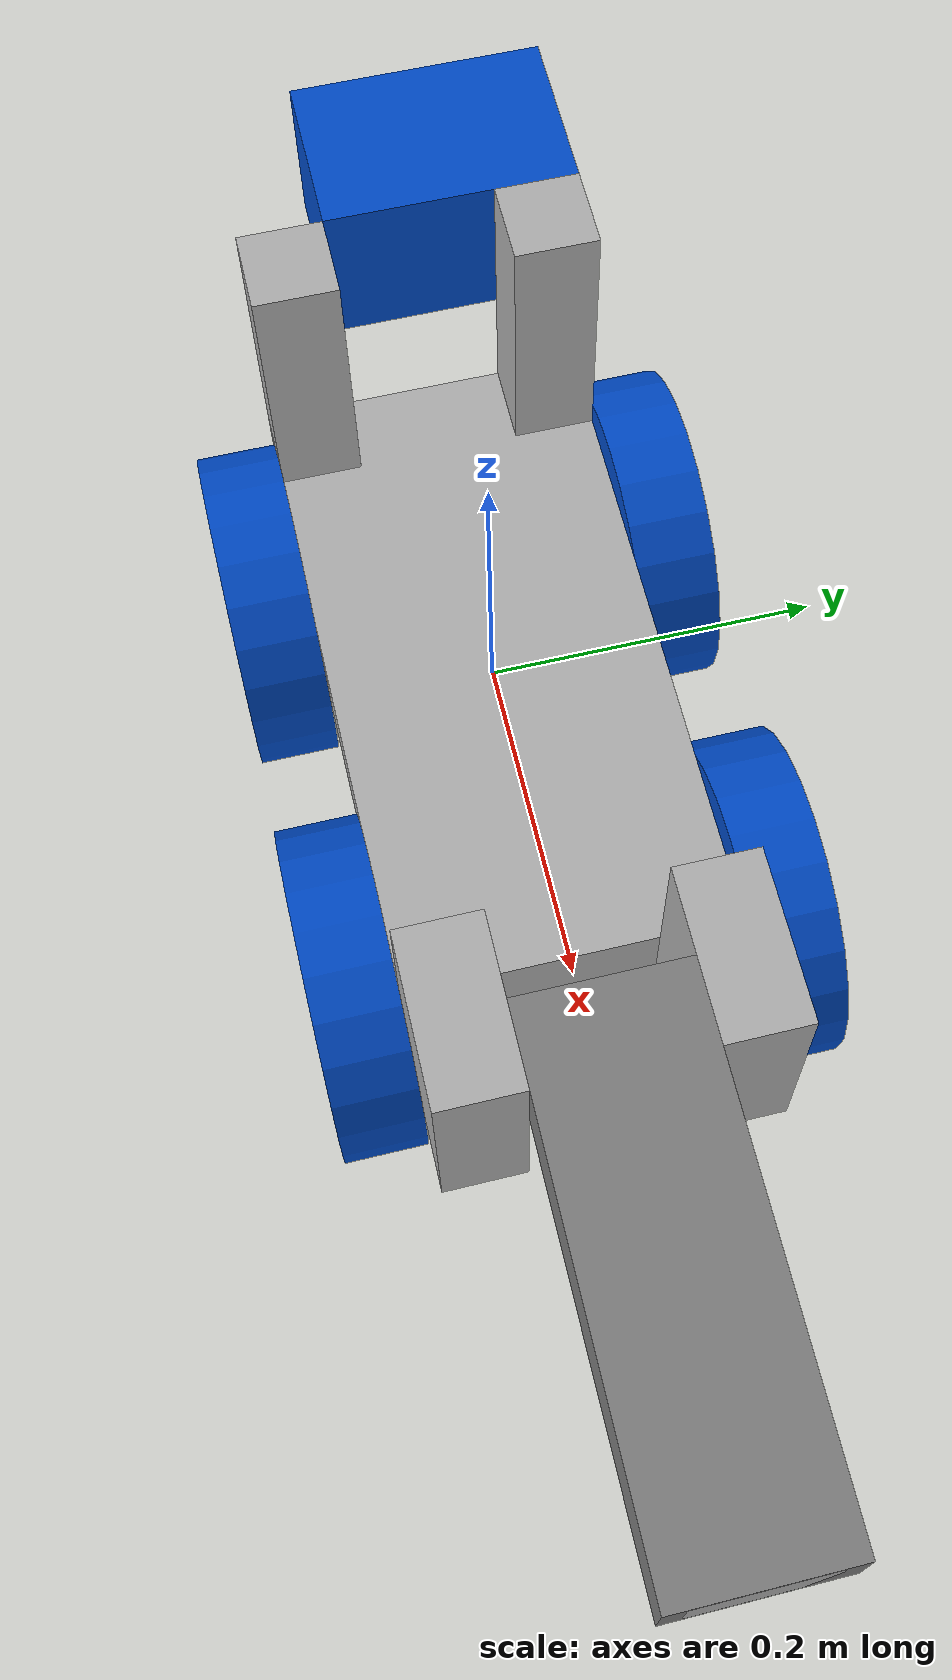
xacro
<?xml version='1.0' encoding="UTF-8"?>

<robot name="excavation_simple" xmlns:xacro="http://www.ros.org/wiki/xacro">

<!--Macros-->
<!--  Macros are constants that can be used to define any
      aspect of the model.  They can define things like
      values, colors, links, joints, transmissions, ect.-->

<!--Dimension Macros=====================================-->
<xacro:property name="wheel_height" value="-0.05"/>
<xacro:property name="wheel_length" value="0.05"/>
<xacro:property name="wheel_scale" value="0.004"/>
<xacro:property name="wheel_mount_width" value="0.05"/>
<xacro:property name="wheel_offset" value="0.11"/>
<xacro:property name="chassis_width" value="0.2"/>
<xacro:property name="chassis_length" value="0.4"/>
<xacro:property name="chassis_height" value="0.05"/>
<xacro:property name="chassis_cutout_length" value="0.1"/>
<xacro:property name="chassis_cutout_width" value="0.05"/>
<xacro:property name="trencher_mount_height" value="0.1"/>
<xacro:property name="trencher_outer_length" value="0.3"/>
<xacro:property name="trencher_outer_width" value="${chassis_width-(chassis_cutout_width*2)}"/>
<xacro:property name="trencher_outer_height" value="0.05"/>
<xacro:property name="trencher_inner_length" value="0.3"/>
<xacro:property name="trencher_inner_width" value="${chassis_width-(chassis_cutout_width*2)-0.025}"/>
<xacro:property name="trencher_inner_height" value="0.045"/>
<xacro:property name="hopper_length" value="0.1"/>
<xacro:property name="hopper_width" value="0.15"/>
<xacro:property name="hopper_height" value="0.1"/>
<xacro:property name="hopper_mount_height" value="0.15"/>
<xacro:property name="hopper_mount_size" value="0.05"/>

<!--Color Macros========================================-->
<xacro:property name="dark_grey" value="0.5 0.5 0.5 1"/>
<xacro:property name="grey" value="0.7 0.7 0.7 1"/>
<xacro:property name="blue" value="0 0.3 0.8 1"/>

<!--Shape Macros========================================-->
<xacro:macro name="wheel" params="name mirror">
<link name="${name}">
    <visual>
      <origin xyz="0 0 0" rpy="0 1.5707 ${mirror*1.5707}"/>
      <geometry>
        <cylinder radius="0.1" length="${wheel_length}"/>
          <!--mesh filename="file://$(find robot-model)/models/meshes/wheel.stl" scale="${wheel_scale} ${wheel_scale} ${wheel_scale}"/-->
      </geometry>
      <material name="wheel_color">
        <color rgba="${blue}"/>
      </material>
    </visual>
  </link>
</xacro:macro>

<xacro:macro name="wheel_mount" params="name">
<link name="${name}">
    <visual>
      <origin xyz="0 0 0" rpy="0 0 0"/>
      <geometry>
        <box size="${wheel_mount_width} ${wheel_mount_width} ${wheel_height}"/>
      </geometry>
      <material name="wheel_mount_color">
        <color rgba="${grey}"/>
      </material>
    </visual>
  </link>
</xacro:macro>

<xacro:macro name="hopper_mount" params="name">
  <link name="${name}_hopper_mount">
    <visual>
      <origin xyz="0 0 0" rpy="0 0 0"/>
      <geometry>
        <box size="${hopper_mount_size} ${hopper_mount_size} ${hopper_mount_height+(hopper_height/2)}"/>
      </geometry>
      <material name="${name}_hopper_mount_color">
        <color rgba="${grey}"/>
      </material>
    </visual>
  </link>
</xacro:macro>

<!--Joint Macros========================================-->
<xacro:macro name="wheel_Joint" params="name parent child x_pos mirror">
  <joint type="continuous" name="${name}_axle">
    <origin  xyz="${x_pos} ${((chassis_width/2)+(wheel_length/2))*mirror} ${wheel_height}" rpy="0 0 0"/>
    <child link="${child}"/>
    <parent link="${parent}"/>
    <axis xyz="0 1 0" rpy="0 0 0"/>
  </joint>
</xacro:macro>

<xacro:macro name="wheel_mount_fixed" params="name child x_pos mirror">
  <joint type="fixed" name="${name}">
    <origin xyz="${x_pos} ${((chassis_width/2)-(wheel_mount_width/2))*mirror} ${wheel_height}" rpy="0 0 0"/>
    <child link="${child}"/>
    <parent link="chassis"/>
  </joint>
</xacro:macro>

<xacro:macro name="hopper_mount_fixed" params="name child x_pos mirror">
  <joint type="fixed" name="${name}_hopper_mount_fixed">
    <origin xyz="${x_pos} ${((chassis_width/2)-(hopper_mount_size/2))*mirror} ${(chassis_height/2)+(hopper_mount_height/2)}" rpy="0 0 0"/>
    <child link="${child}"/>
    <parent link="chassis"/>
  </joint>
</xacro:macro>

<!--Transmission Macros========================================-->
<xacro:macro name="wheel_transmission" params="name joint">
  <transmission name="${name}_wheel_transmission">
    <type>transmission_interface/SimpleTransmission</type>
    <joint name="${joint}">
      <hardwareInterface>hardware_interface/VelocityJointInterface</hardwareInterface>
    </joint>
    <actuator name="${name}_motor">
      <hardwareInterface>hardware_interface/VelocityJointInterface</hardwareInterface>
    </actuator>
  </transmission>
</xacro:macro>

<!--Links====================================-->

<!--  Links are the physical pieces of the model.  They
      can be defined to have diffenet shapes, sizes, and
      materials.  Meshes can be used to give links a
      completly custom appearance-->

<link name='chassis'>
    <visual>
      <origin xyz="0 0 0" rpy="0 0 0"/>
      <geometry>
        <box size="${chassis_length} ${chassis_width} ${chassis_height}"/>
      </geometry>
      <material name="chassis_color">
        <color rgba="${grey}"/>
      </material>
    </visual>
  </link>

  <link name='left_cutout'>
    <visual>
      <origin xyz="0 0 ${trencher_mount_height/2}" rpy="0 0 0"/>
      <geometry>
        <box size="${chassis_cutout_length} ${chassis_cutout_width} ${chassis_height+trencher_mount_height}"/>
      </geometry>
      <material name="left_cutout_color">
        <color rgba="${grey}"/>
      </material>
    </visual>
  </link>

  <link name='right_cutout'>
    <visual>
      <origin xyz="0 0 ${trencher_mount_height/2}" rpy="0 0 0"/>
      <geometry>
        <box size="${chassis_cutout_length} ${chassis_cutout_width} ${chassis_height+trencher_mount_height}"/>
      </geometry>
      <material name="right_cutout_color">
        <color rgba="${grey}"/>
      </material>
    </visual>
  </link>

  <link name='trencher_outer'>
    <visual>
      <origin xyz="${trencher_outer_length/2} 0 0" rpy="0 0 0"/>
      <geometry>
        <box size="${trencher_outer_length} ${trencher_outer_width} ${trencher_outer_height}"/>
      </geometry>
      <material name="trencher_outer_color">
        <color rgba="${dark_grey}"/>
      </material>
    </visual>
  </link>

  <link name='trencher_inner'>
    <visual>
      <origin xyz="${trencher_inner_length/2} 0 0" rpy="0 0 0"/>
      <geometry>
        <box size="${trencher_inner_length} ${trencher_inner_width} ${trencher_inner_height}"/>
      </geometry>
      <material name="trencher_inner_color">
        <color rgba="${grey}"/>
      </material>
    </visual>
  </link>

<link name='hopper'>
    <visual>
      <origin xyz="0 0 0" rpy="0 0 0"/>
      <geometry>
        <box size="${hopper_length} ${hopper_width} ${hopper_height}"/>
      </geometry>
      <material name="hopper_color">
        <color rgba="${blue}"/>
      </material>
    </visual>
  </link>

  <xacro:wheel name="front_left" mirror="-1"/>
  <xacro:wheel name="front_right" mirror="1"/>
  <xacro:wheel name="back_left" mirror="-1"/>
  <xacro:wheel name="back_right" mirror="1"/>

  <xacro:hopper_mount name="left" />
  <xacro:hopper_mount name="right" />

<!--Joints=========================================-->

<!--  Joints connect links together.  Joints can be
      of different types that dictate the type of
      motion they have-->

  <xacro:wheel_mount name="front_left_mount" />
  <xacro:wheel_mount name="front_right_mount" />
  <xacro:wheel_mount name="back_left_mount" />
  <xacro:wheel_mount name="back_right_mount" />

  <xacro:wheel_Joint name="front_left" parent="chassis" child="front_left" x_pos="${wheel_offset+(chassis_cutout_length/2)}" mirror="1"/>
  <xacro:wheel_Joint name="front_right" parent="chassis" child="front_right" x_pos="${wheel_offset+(chassis_cutout_length/2)}" mirror="-1"/>
  <xacro:wheel_Joint name="back_left" parent="chassis" child="back_left" x_pos="${wheel_offset*-1}" mirror="1"/>
  <xacro:wheel_Joint name="back_right" parent="chassis" child="back_right" x_pos="${wheel_offset*-1}" mirror="-1"/>

  <xacro:wheel_mount_fixed name="front_left_fixed" child="front_left_mount" x_pos="${wheel_offset+(chassis_cutout_length/2)}" mirror="1"/>
  <xacro:wheel_mount_fixed name="front_right_fixed" child="front_right_mount" x_pos="${wheel_offset+(chassis_cutout_length/2)}" mirror="-1"/>
  <xacro:wheel_mount_fixed name="back_left_fixed" child="back_left_mount" x_pos="${wheel_offset*-1}" mirror="1"/>
  <xacro:wheel_mount_fixed name="back_right_fixed" child="back_right_mount" x_pos="${wheel_offset*-1}" mirror="-1"/>

  <xacro:hopper_mount_fixed name="left" child="left_hopper_mount" x_pos="${(chassis_length/-2)+(hopper_mount_size/2)}" mirror="1"/>
  <xacro:hopper_mount_fixed name="right" child="right_hopper_mount" x_pos="${(chassis_length/-2)+(hopper_mount_size/2)}" mirror="-1"/>

  <joint type="fixed" name="left_cutout_fixed">
    <origin xyz="${(chassis_length/2)+(chassis_cutout_length/2)} ${(chassis_width/2)-(chassis_cutout_width/2)} 0" rpy="0 0 0"/>
    <child link="left_cutout"/>
    <parent link="chassis"/>
  </joint>

  <joint type="fixed" name="right_cutout_fixed">
    <origin xyz="${(chassis_length/2)+(chassis_cutout_length/2)} ${((chassis_width/2)-(chassis_cutout_width/2))*-1} 0" rpy="0 0 0"/>
    <child link="right_cutout"/>
    <parent link="chassis"/>
  </joint>

  <joint type="revolute" name="trencher_axle">
    <origin  xyz="0 ${chassis_cutout_width*-1.5} ${(trencher_mount_height/2)+(trencher_outer_height)}" rpy="0 0 0"/>
    <child link="trencher_outer"/>
    <parent link="left_cutout"/>
    <axis xyz="0 1 0" rpy="0 0 0"/>
    <limit upper="1" lower="-2.75" effort="0" velocity="1"/>
  </joint>

  <joint type="prismatic" name="trencher_extend">
    <origin  xyz="0 0 0" rpy="0 0 0"/>
    <child link="trencher_inner"/>
    <parent link="trencher_outer"/>
    <axis xyz="1 0 0" rpy="0 0 0"/>
    <limit upper="${trencher_inner_length}" lower="0" effort="0" velocity="1"/>
  </joint>

  <joint type="fixed" name="hopper_cutout_fixed">
    <origin xyz="${(chassis_length/-2)+(hopper_length/-2)} ${(chassis_width/2)-(hopper_width/2)} ${hopper_mount_height}" rpy="0 0 0"/>
    <child link="hopper"/>
    <parent link="chassis"/>
  </joint>

<!--Transmissions=========================================-->

<!--  Transmissions allow joints to listen for ROS messages,
      all transmissions must be added to a yaml file-->

  <xacro:wheel_transmission name="front_left" joint="front_left_axle"/>
  <xacro:wheel_transmission name="front_right" joint="front_right_axle"/>
  <xacro:wheel_transmission name="back_left" joint="back_left_axle"/>
  <xacro:wheel_transmission name="back_right" joint="back_right_axle"/>

  <transmission name="trencher_pivot_transmission">
    <type>transmission_interface/SimpleTransmission</type>
    <joint name="trencher_axle">
      <hardwareInterface>hardware_interface/VelocityJointInterface</hardwareInterface>
    </joint>
    <actuator name="trencher_axle_motor">
      <hardwareInterface>hardware_interface/VelocityJointInterface</hardwareInterface>
    </actuator>
  </transmission>

</robot>
